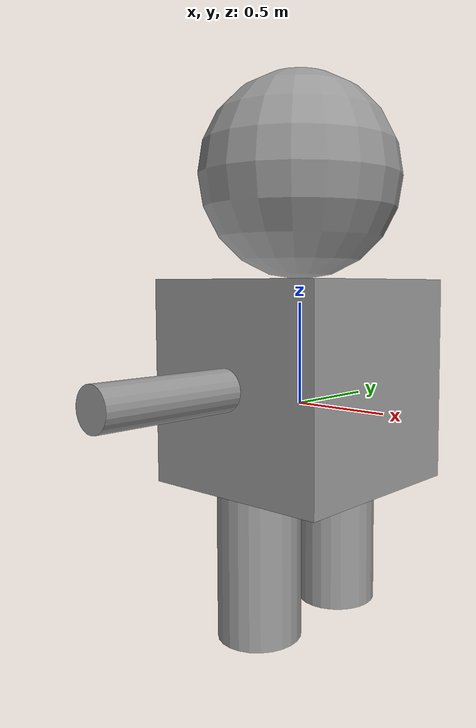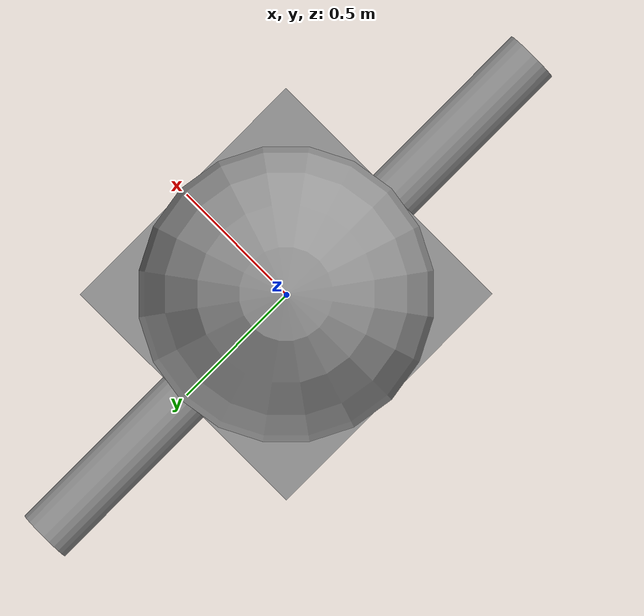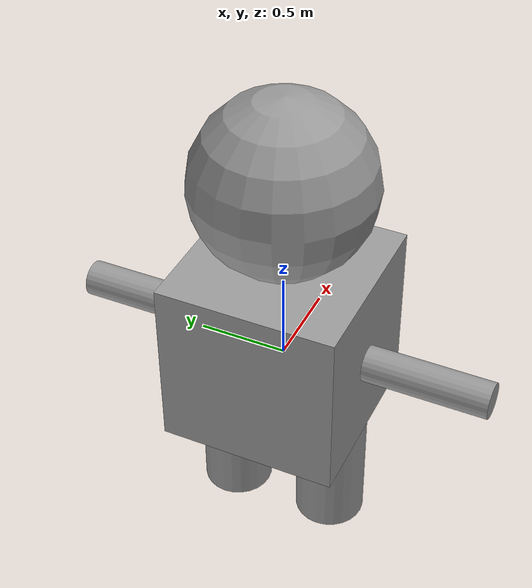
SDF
<?xml version='1.0'?>
<sdf version='1.6'>
  <model name='HumanoidRobot'>
    <link name='link_0'>
      <pose frame=''>0.003337 -0.300002 -0.733333 0 -0 0</pose>
      <inertial>
        <mass>1</mass>
        <inertia>
          <ixx>0.145833</ixx>
          <ixy>0</ixy>
          <ixz>0</ixz>
          <iyy>0.145833</iyy>
          <iyz>0</iyz>
          <izz>0.125</izz>
        </inertia>
        <pose frame=''>0 0 0 0 -0 0</pose>
      </inertial>
      <self_collide>0</self_collide>
      <kinematic>0</kinematic>
      <visual name='visual'>
        <pose frame=''>0 0 0 0 -0 0</pose>
        <geometry>
          <cylinder>
            <radius>0.2</radius>
            <length>0.7</length>
          </cylinder>
        </geometry>
        <material>
          <lighting>1</lighting>
          <script>
            <uri>file://media/materials/scripts/gazebo.material</uri>
            <name>Gazebo/Grey</name>
          </script>
          <shader type='pixel'>
            <normal_map>__default__</normal_map>
          </shader>
          <ambient>0.3 0.3 0.3 1</ambient>
          <diffuse>0.7 0.7 0.7 1</diffuse>
          <specular>0.01 0.01 0.01 1</specular>
          <emissive>0 0 0 1</emissive>
        </material>
        <transparency>0</transparency>
        <cast_shadows>1</cast_shadows>
      </visual>
      <collision name='collision'>
        <laser_retro>0</laser_retro>
        <max_contacts>10</max_contacts>
        <pose frame=''>0 0 0 0 -0 0</pose>
        <geometry>
          <cylinder>
            <radius>0.2</radius>
            <length>0.7</length>
          </cylinder>
        </geometry>
        <surface>
          <friction>
            <ode>
              <mu>1</mu>
              <mu2>1</mu2>
              <fdir1>0 0 0</fdir1>
              <slip1>0</slip1>
              <slip2>0</slip2>
            </ode>
            <torsional>
              <coefficient>1</coefficient>
              <patch_radius>0</patch_radius>
              <surface_radius>0</surface_radius>
              <use_patch_radius>1</use_patch_radius>
              <ode>
                <slip>0</slip>
              </ode>
            </torsional>
          </friction>
          <bounce>
            <restitution_coefficient>0</restitution_coefficient>
            <threshold>1e+06</threshold>
          </bounce>
          <contact>
            <collide_without_contact>0</collide_without_contact>
            <collide_without_contact_bitmask>1</collide_without_contact_bitmask>
            <collide_bitmask>1</collide_bitmask>
            <ode>
              <soft_cfm>0</soft_cfm>
              <soft_erp>0.2</soft_erp>
              <kp>1e+13</kp>
              <kd>1</kd>
              <max_vel>0.01</max_vel>
              <min_depth>0</min_depth>
            </ode>
            <bullet>
              <split_impulse>1</split_impulse>
              <split_impulse_penetration_threshold>-0.01</split_impulse_penetration_threshold>
              <soft_cfm>0</soft_cfm>
              <soft_erp>0.2</soft_erp>
              <kp>1e+13</kp>
              <kd>1</kd>
            </bullet>
          </contact>
        </surface>
      </collision>
    </link>
    <link name='link_0_clone'>
      <pose frame=''>0.003337 0.299998 -0.733333 0 -0 0</pose>
      <inertial>
        <mass>1</mass>
        <inertia>
          <ixx>0.145833</ixx>
          <ixy>0</ixy>
          <ixz>0</ixz>
          <iyy>0.145833</iyy>
          <iyz>0</iyz>
          <izz>0.125</izz>
        </inertia>
        <pose frame=''>0 0 0 0 -0 0</pose>
      </inertial>
      <self_collide>0</self_collide>
      <kinematic>0</kinematic>
      <visual name='visual'>
        <pose frame=''>0 0 0 0 -0 0</pose>
        <geometry>
          <cylinder>
            <radius>0.2</radius>
            <length>0.7</length>
          </cylinder>
        </geometry>
        <material>
          <lighting>1</lighting>
          <script>
            <uri>file://media/materials/scripts/gazebo.material</uri>
            <name>Gazebo/Grey</name>
          </script>
          <shader type='pixel'>
            <normal_map>__default__</normal_map>
          </shader>
          <ambient>0.3 0.3 0.3 1</ambient>
          <diffuse>0.7 0.7 0.7 1</diffuse>
          <specular>0.01 0.01 0.01 1</specular>
          <emissive>0 0 0 1</emissive>
        </material>
        <transparency>0</transparency>
        <cast_shadows>1</cast_shadows>
      </visual>
      <collision name='collision'>
        <laser_retro>0</laser_retro>
        <max_contacts>10</max_contacts>
        <pose frame=''>0 0 0 0 -0 0</pose>
        <geometry>
          <cylinder>
            <radius>0.2</radius>
            <length>0.7</length>
          </cylinder>
        </geometry>
        <surface>
          <friction>
            <ode>
              <mu>1</mu>
              <mu2>1</mu2>
              <fdir1>0 0 0</fdir1>
              <slip1>0</slip1>
              <slip2>0</slip2>
            </ode>
            <torsional>
              <coefficient>1</coefficient>
              <patch_radius>0</patch_radius>
              <surface_radius>0</surface_radius>
              <use_patch_radius>1</use_patch_radius>
              <ode>
                <slip>0</slip>
              </ode>
            </torsional>
          </friction>
          <bounce>
            <restitution_coefficient>0</restitution_coefficient>
            <threshold>1e+06</threshold>
          </bounce>
          <contact>
            <collide_without_contact>0</collide_without_contact>
            <collide_without_contact_bitmask>1</collide_without_contact_bitmask>
            <collide_bitmask>1</collide_bitmask>
            <ode>
              <soft_cfm>0</soft_cfm>
              <soft_erp>0.2</soft_erp>
              <kp>1e+13</kp>
              <kd>1</kd>
              <max_vel>0.01</max_vel>
              <min_depth>0</min_depth>
            </ode>
            <bullet>
              <split_impulse>1</split_impulse>
              <split_impulse_penetration_threshold>-0.01</split_impulse_penetration_threshold>
              <soft_cfm>0</soft_cfm>
              <soft_erp>0.2</soft_erp>
              <kp>1e+13</kp>
              <kd>1</kd>
            </bullet>
          </contact>
        </surface>
      </collision>
    </link>
    <link name='link_1'>
      <pose frame=''>0.003337 -2e-06 0.116667 0 -0 0</pose>
      <inertial>
        <mass>1</mass>
        <inertia>
          <ixx>0.166667</ixx>
          <ixy>0</ixy>
          <ixz>0</ixz>
          <iyy>0.166667</iyy>
          <iyz>0</iyz>
          <izz>0.166667</izz>
        </inertia>
      </inertial>
      <self_collide>0</self_collide>
      <kinematic>0</kinematic>
      <visual name='visual'>
        <pose frame=''>0 0 0 0 -0 0</pose>
        <geometry>
          <box>
            <size>1 1 1</size>
          </box>
        </geometry>
        <material>
          <lighting>1</lighting>
          <script>
            <uri>file://media/materials/scripts/gazebo.material</uri>
            <name>Gazebo/Grey</name>
          </script>
          <shader type='pixel'/>
          <ambient>0.3 0.3 0.3 1</ambient>
          <diffuse>0.7 0.7 0.7 1</diffuse>
          <specular>0.01 0.01 0.01 1</specular>
          <emissive>0 0 0 1</emissive>
        </material>
        <transparency>0</transparency>
        <cast_shadows>1</cast_shadows>
      </visual>
      <collision name='collision'>
        <laser_retro>0</laser_retro>
        <max_contacts>10</max_contacts>
        <pose frame=''>0 0 0 0 -0 0</pose>
        <geometry>
          <box>
            <size>1 1 1</size>
          </box>
        </geometry>
        <surface>
          <friction>
            <ode>
              <mu>1</mu>
              <mu2>1</mu2>
              <fdir1>0 0 0</fdir1>
              <slip1>0</slip1>
              <slip2>0</slip2>
            </ode>
            <torsional>
              <coefficient>1</coefficient>
              <patch_radius>0</patch_radius>
              <surface_radius>0</surface_radius>
              <use_patch_radius>1</use_patch_radius>
              <ode>
                <slip>0</slip>
              </ode>
            </torsional>
          </friction>
          <bounce>
            <restitution_coefficient>0</restitution_coefficient>
            <threshold>1e+06</threshold>
          </bounce>
          <contact>
            <collide_without_contact>0</collide_without_contact>
            <collide_without_contact_bitmask>1</collide_without_contact_bitmask>
            <collide_bitmask>1</collide_bitmask>
            <ode>
              <soft_cfm>0</soft_cfm>
              <soft_erp>0.2</soft_erp>
              <kp>1e+13</kp>
              <kd>1</kd>
              <max_vel>0.01</max_vel>
              <min_depth>0</min_depth>
            </ode>
            <bullet>
              <split_impulse>1</split_impulse>
              <split_impulse_penetration_threshold>-0.01</split_impulse_penetration_threshold>
              <soft_cfm>0</soft_cfm>
              <soft_erp>0.2</soft_erp>
              <kp>1e+13</kp>
              <kd>1</kd>
            </bullet>
          </contact>
        </surface>
      </collision>
    </link>
    <link name='link_3'>
      <pose frame=''>0.003337 -2e-06 1.11667 0 -0 0</pose>
      <inertial>
        <mass>1</mass>
        <inertia>
          <ixx>0.1</ixx>
          <ixy>0</ixy>
          <ixz>0</ixz>
          <iyy>0.1</iyy>
          <iyz>0</iyz>
          <izz>0.1</izz>
        </inertia>
      </inertial>
      <self_collide>0</self_collide>
      <kinematic>0</kinematic>
      <visual name='visual'>
        <pose frame=''>0 0 0 0 -0 0</pose>
        <geometry>
          <sphere>
            <radius>0.5</radius>
          </sphere>
        </geometry>
        <material>
          <lighting>1</lighting>
          <script>
            <uri>file://media/materials/scripts/gazebo.material</uri>
            <name>Gazebo/Grey</name>
          </script>
          <shader type='pixel'/>
          <ambient>0.3 0.3 0.3 1</ambient>
          <diffuse>0.7 0.7 0.7 1</diffuse>
          <specular>0.01 0.01 0.01 1</specular>
          <emissive>0 0 0 1</emissive>
        </material>
        <transparency>0</transparency>
        <cast_shadows>1</cast_shadows>
      </visual>
      <collision name='collision'>
        <laser_retro>0</laser_retro>
        <max_contacts>10</max_contacts>
        <pose frame=''>0 0 0 0 -0 0</pose>
        <geometry>
          <sphere>
            <radius>0.5</radius>
          </sphere>
        </geometry>
        <surface>
          <friction>
            <ode>
              <mu>1</mu>
              <mu2>1</mu2>
              <fdir1>0 0 0</fdir1>
              <slip1>0</slip1>
              <slip2>0</slip2>
            </ode>
            <torsional>
              <coefficient>1</coefficient>
              <patch_radius>0</patch_radius>
              <surface_radius>0</surface_radius>
              <use_patch_radius>1</use_patch_radius>
              <ode>
                <slip>0</slip>
              </ode>
            </torsional>
          </friction>
          <bounce>
            <restitution_coefficient>0</restitution_coefficient>
            <threshold>1e+06</threshold>
          </bounce>
          <contact>
            <collide_without_contact>0</collide_without_contact>
            <collide_without_contact_bitmask>1</collide_without_contact_bitmask>
            <collide_bitmask>1</collide_bitmask>
            <ode>
              <soft_cfm>0</soft_cfm>
              <soft_erp>0.2</soft_erp>
              <kp>1e+13</kp>
              <kd>1</kd>
              <max_vel>0.01</max_vel>
              <min_depth>0</min_depth>
            </ode>
            <bullet>
              <split_impulse>1</split_impulse>
              <split_impulse_penetration_threshold>-0.01</split_impulse_penetration_threshold>
              <soft_cfm>0</soft_cfm>
              <soft_erp>0.2</soft_erp>
              <kp>1e+13</kp>
              <kd>1</kd>
            </bullet>
          </contact>
        </surface>
      </collision>
    </link>
    <link name='link_4'>
      <pose frame=''>-0.016663 -0.850011 0.116667 0 -0 0</pose>
      <inertial>
        <mass>1</mass>
        <inertia>
          <ixx>0.145833</ixx>
          <ixy>0</ixy>
          <ixz>0</ixz>
          <iyy>0.145833</iyy>
          <iyz>0</iyz>
          <izz>0.125</izz>
        </inertia>
        <pose frame=''>0 0 0 0 -0 0</pose>
      </inertial>
      <self_collide>0</self_collide>
      <kinematic>0</kinematic>
      <visual name='visual'>
        <pose frame=''>0 0 0 1.5707 -0 0</pose>
        <geometry>
          <cylinder>
            <radius>0.1</radius>
            <length>0.7</length>
          </cylinder>
        </geometry>
        <material>
          <lighting>1</lighting>
          <script>
            <uri>file://media/materials/scripts/gazebo.material</uri>
            <name>Gazebo/Grey</name>
          </script>
          <shader type='pixel'>
            <normal_map>__default__</normal_map>
          </shader>
          <ambient>0.3 0.3 0.3 1</ambient>
          <diffuse>0.7 0.7 0.7 1</diffuse>
          <specular>0.01 0.01 0.01 1</specular>
          <emissive>0 0 0 1</emissive>
        </material>
        <transparency>0</transparency>
        <cast_shadows>1</cast_shadows>
      </visual>
      <collision name='collision'>
        <laser_retro>0</laser_retro>
        <max_contacts>10</max_contacts>
        <pose frame=''>0 0 0 1.5707 -0 0</pose>
        <geometry>
          <cylinder>
            <radius>0.1</radius>
            <length>0.7</length>
          </cylinder>
        </geometry>
        <surface>
          <friction>
            <ode>
              <mu>1</mu>
              <mu2>1</mu2>
              <fdir1>0 0 0</fdir1>
              <slip1>0</slip1>
              <slip2>0</slip2>
            </ode>
            <torsional>
              <coefficient>1</coefficient>
              <patch_radius>0</patch_radius>
              <surface_radius>0</surface_radius>
              <use_patch_radius>1</use_patch_radius>
              <ode>
                <slip>0</slip>
              </ode>
            </torsional>
          </friction>
          <bounce>
            <restitution_coefficient>0</restitution_coefficient>
            <threshold>1e+06</threshold>
          </bounce>
          <contact>
            <collide_without_contact>0</collide_without_contact>
            <collide_without_contact_bitmask>1</collide_without_contact_bitmask>
            <collide_bitmask>1</collide_bitmask>
            <ode>
              <soft_cfm>0</soft_cfm>
              <soft_erp>0.2</soft_erp>
              <kp>1e+13</kp>
              <kd>1</kd>
              <max_vel>0.01</max_vel>
              <min_depth>0</min_depth>
            </ode>
            <bullet>
              <split_impulse>1</split_impulse>
              <split_impulse_penetration_threshold>-0.01</split_impulse_penetration_threshold>
              <soft_cfm>0</soft_cfm>
              <soft_erp>0.2</soft_erp>
              <kp>1e+13</kp>
              <kd>1</kd>
            </bullet>
          </contact>
        </surface>
      </collision>
    </link>
    <link name='link_4_clone'>
      <pose frame=''>0.003337 0.850008 0.116667 0 -0 0</pose>
      <inertial>
        <mass>1</mass>
        <inertia>
          <ixx>0.145833</ixx>
          <ixy>0</ixy>
          <ixz>0</ixz>
          <iyy>0.145833</iyy>
          <iyz>0</iyz>
          <izz>0.125</izz>
        </inertia>
        <pose frame=''>0 0 0 0 -0 0</pose>
      </inertial>
      <self_collide>0</self_collide>
      <kinematic>0</kinematic>
      <visual name='visual'>
        <pose frame=''>0 0 0 1.5707 -0 0</pose>
        <geometry>
          <cylinder>
            <radius>0.1</radius>
            <length>0.7</length>
          </cylinder>
        </geometry>
        <material>
          <lighting>1</lighting>
          <script>
            <uri>file://media/materials/scripts/gazebo.material</uri>
            <name>Gazebo/Grey</name>
          </script>
          <shader type='pixel'>
            <normal_map>__default__</normal_map>
          </shader>
          <ambient>0.3 0.3 0.3 1</ambient>
          <diffuse>0.7 0.7 0.7 1</diffuse>
          <specular>0.01 0.01 0.01 1</specular>
          <emissive>0 0 0 1</emissive>
        </material>
        <transparency>0</transparency>
        <cast_shadows>1</cast_shadows>
      </visual>
      <collision name='collision'>
        <laser_retro>0</laser_retro>
        <max_contacts>10</max_contacts>
        <pose frame=''>0 0 0 1.5707 -0 0</pose>
        <geometry>
          <cylinder>
            <radius>0.1</radius>
            <length>0.7</length>
          </cylinder>
        </geometry>
        <surface>
          <friction>
            <ode>
              <mu>1</mu>
              <mu2>1</mu2>
              <fdir1>0 0 0</fdir1>
              <slip1>0</slip1>
              <slip2>0</slip2>
            </ode>
            <torsional>
              <coefficient>1</coefficient>
              <patch_radius>0</patch_radius>
              <surface_radius>0</surface_radius>
              <use_patch_radius>1</use_patch_radius>
              <ode>
                <slip>0</slip>
              </ode>
            </torsional>
          </friction>
          <bounce>
            <restitution_coefficient>0</restitution_coefficient>
            <threshold>1e+06</threshold>
          </bounce>
          <contact>
            <collide_without_contact>0</collide_without_contact>
            <collide_without_contact_bitmask>1</collide_without_contact_bitmask>
            <collide_bitmask>1</collide_bitmask>
            <ode>
              <soft_cfm>0</soft_cfm>
              <soft_erp>0.2</soft_erp>
              <kp>1e+13</kp>
              <kd>1</kd>
              <max_vel>0.01</max_vel>
              <min_depth>0</min_depth>
            </ode>
            <bullet>
              <split_impulse>1</split_impulse>
              <split_impulse_penetration_threshold>-0.01</split_impulse_penetration_threshold>
              <soft_cfm>0</soft_cfm>
              <soft_erp>0.2</soft_erp>
              <kp>1e+13</kp>
              <kd>1</kd>
            </bullet>
          </contact>
        </surface>
      </collision>
    </link>
    <joint name='link_1_JOINT_0' type='revolute'>
      <parent>link_1</parent>
      <child>link_3</child>
      <pose frame=''>0 0 0 0 -0 0</pose>
      <axis>
        <xyz>1 0 0</xyz>
        <use_parent_model_frame>0</use_parent_model_frame>
        <limit>
          <lower>-1.79769e+308</lower>
          <upper>1.79769e+308</upper>
          <effort>-1</effort>
          <velocity>-1</velocity>
        </limit>
        <dynamics>
          <spring_reference>0</spring_reference>
          <spring_stiffness>0</spring_stiffness>
          <damping>0</damping>
          <friction>0</friction>
        </dynamics>
      </axis>
      <physics>
        <ode>
          <limit>
            <cfm>0</cfm>
            <erp>0.2</erp>
          </limit>
          <suspension>
            <cfm>0</cfm>
            <erp>0.2</erp>
          </suspension>
        </ode>
      </physics>
    </joint>
    <joint name='link_1_JOINT_1' type='revolute'>
      <parent>link_1</parent>
      <child>link_0</child>
      <pose frame=''>0 0 0 0 -0 0</pose>
      <axis>
        <xyz>1 0 0</xyz>
        <use_parent_model_frame>0</use_parent_model_frame>
        <limit>
          <lower>-1.79769e+308</lower>
          <upper>1.79769e+308</upper>
          <effort>-1</effort>
          <velocity>-1</velocity>
        </limit>
        <dynamics>
          <spring_reference>0</spring_reference>
          <spring_stiffness>0</spring_stiffness>
          <damping>0</damping>
          <friction>0</friction>
        </dynamics>
      </axis>
      <physics>
        <ode>
          <limit>
            <cfm>0</cfm>
            <erp>0.2</erp>
          </limit>
          <suspension>
            <cfm>0</cfm>
            <erp>0.2</erp>
          </suspension>
        </ode>
      </physics>
    </joint>
    <joint name='link_1_JOINT_2' type='revolute'>
      <parent>link_1</parent>
      <child>link_0_clone</child>
      <pose frame=''>0 0 0 0 -0 0</pose>
      <axis>
        <xyz>1 0 0</xyz>
        <use_parent_model_frame>0</use_parent_model_frame>
        <limit>
          <lower>-1.79769e+308</lower>
          <upper>1.79769e+308</upper>
          <effort>-1</effort>
          <velocity>-1</velocity>
        </limit>
        <dynamics>
          <spring_reference>0</spring_reference>
          <spring_stiffness>0</spring_stiffness>
          <damping>0</damping>
          <friction>0</friction>
        </dynamics>
      </axis>
      <physics>
        <ode>
          <limit>
            <cfm>0</cfm>
            <erp>0.2</erp>
          </limit>
          <suspension>
            <cfm>0</cfm>
            <erp>0.2</erp>
          </suspension>
        </ode>
      </physics>
    </joint>
    <joint name='link_1_JOINT_3' type='revolute'>
      <parent>link_1</parent>
      <child>link_4</child>
      <pose frame=''>0 0 0 0 -0 0</pose>
      <axis>
        <xyz>1 0 0</xyz>
        <use_parent_model_frame>0</use_parent_model_frame>
        <limit>
          <lower>-1.79769e+308</lower>
          <upper>1.79769e+308</upper>
          <effort>-1</effort>
          <velocity>-1</velocity>
        </limit>
        <dynamics>
          <spring_reference>0</spring_reference>
          <spring_stiffness>0</spring_stiffness>
          <damping>0</damping>
          <friction>0</friction>
        </dynamics>
      </axis>
      <physics>
        <ode>
          <limit>
            <cfm>0</cfm>
            <erp>0.2</erp>
          </limit>
          <suspension>
            <cfm>0</cfm>
            <erp>0.2</erp>
          </suspension>
        </ode>
      </physics>
    </joint>
    <joint name='link_1_JOINT_4' type='revolute'>
      <parent>link_1</parent>
      <child>link_4_clone</child>
      <pose frame=''>0 0 0 0 -0 0</pose>
      <axis>
        <xyz>1 0 0</xyz>
        <use_parent_model_frame>0</use_parent_model_frame>
        <limit>
          <lower>-1.79769e+308</lower>
          <upper>1.79769e+308</upper>
          <effort>-1</effort>
          <velocity>-1</velocity>
        </limit>
        <dynamics>
          <spring_reference>0</spring_reference>
          <spring_stiffness>0</spring_stiffness>
          <damping>0</damping>
          <friction>0</friction>
        </dynamics>
      </axis>
      <physics>
        <ode>
          <limit>
            <cfm>0</cfm>
            <erp>0.2</erp>
          </limit>
          <suspension>
            <cfm>0</cfm>
            <erp>0.2</erp>
          </suspension>
        </ode>
      </physics>
    </joint>
    <static>0</static>
    <allow_auto_disable>1</allow_auto_disable>
  </model>
</sdf>
